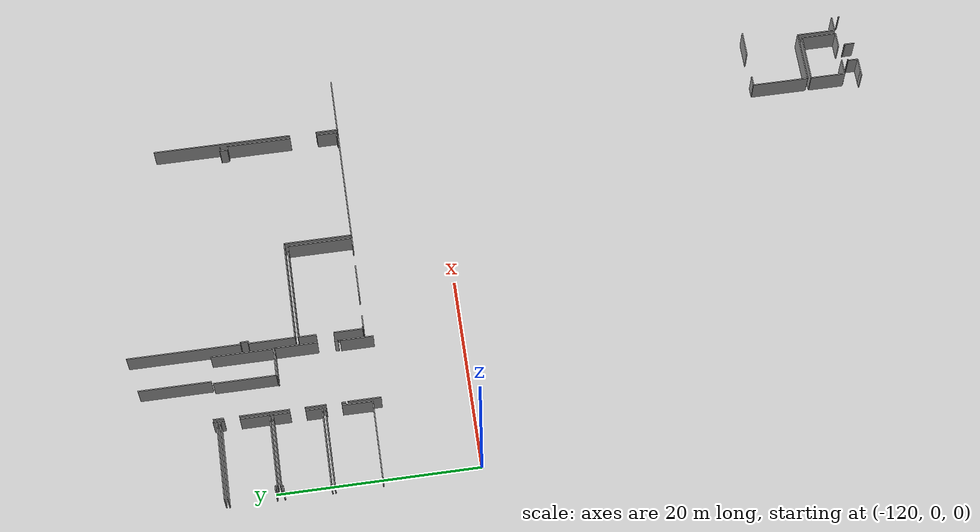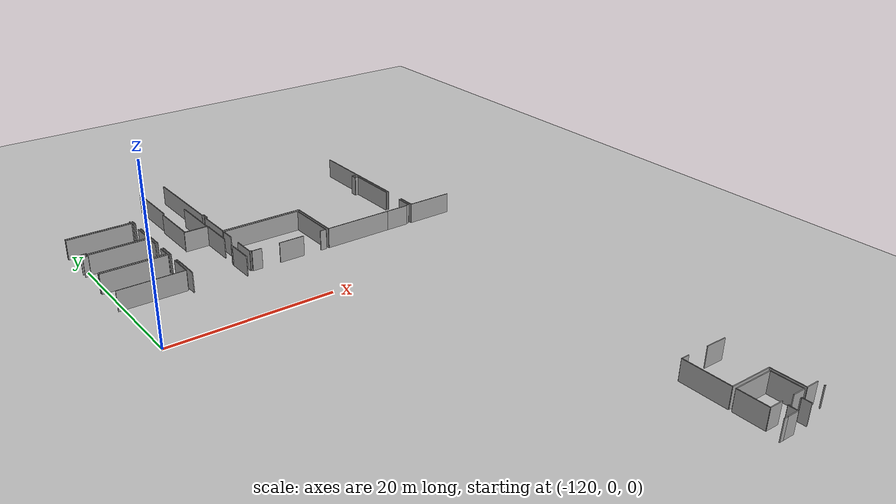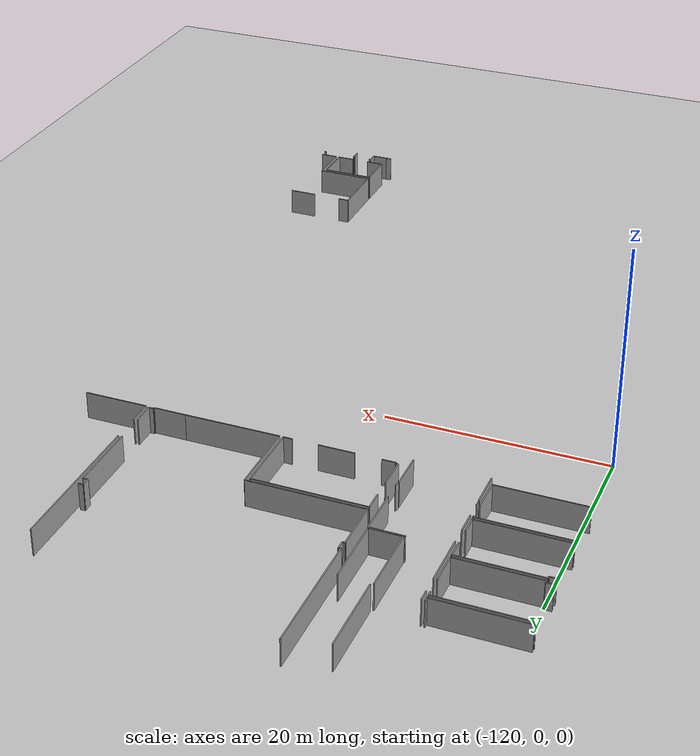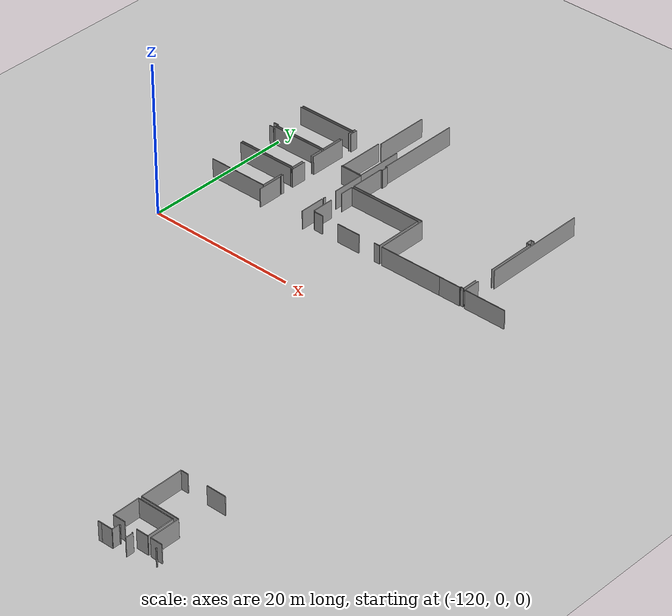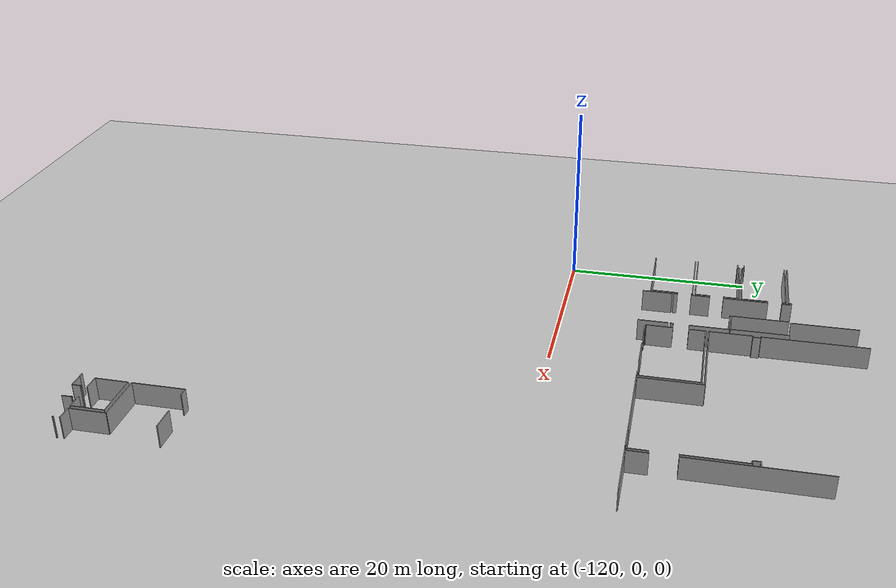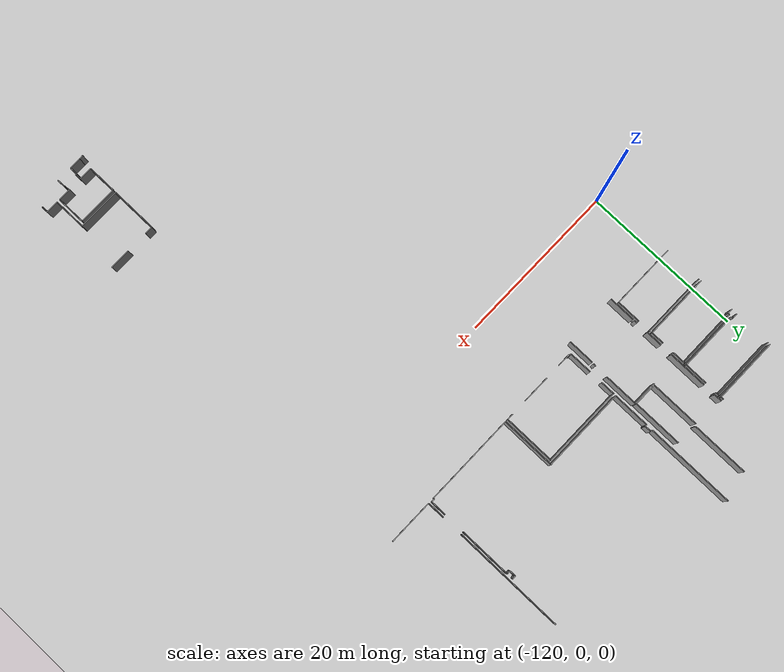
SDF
<sdf version="1.6">
 <world name="default">
  <model name="ground_plane">
   <static>1</static>
   <link name="link">
    <collision name="collision">
     <geometry><plane><normal>0 0 1</normal><size>100 100</size></plane></geometry>
     <surface><friction><ode><mu>100</mu><mu2>50</mu2></ode></friction></surface>
    </collision>
    <visual name="visual">
     <cast_shadows>0</cast_shadows>
     <geometry><plane><normal>0 0 1</normal><size>100 100</size></plane></geometry>
     <material>
      <script><uri>file://media/materials/scripts/gazebo.material</uri><name>Gazebo/Grey</name></script>
     </material>
    </visual>
   </link>
  </model>
  <model name="0510045926_A-40">
   <static>1</static>
   <link name="Wall_648">
    <collision name="Wall_648_Collision">
     <geometry><box><size>6.18366194323 0.1 2.5</size></box></geometry>
     <pose>3.09183097161 0 1.25 0 0 0</pose>
    </collision>
    <visual name="Wall_648_Visual">
     <pose>3.09183097161 0 1.25 0 0 0</pose>
     <geometry><box><size>6.18366194323 0.1 2.5</size></box></geometry>
     <material>
      <script><uri>file://media/materials/scripts/gazebo.material</uri><name>Gazebo/Grey</name></script>
      <ambient>1 1 1 1</ambient>
     </material>
    </visual>
    <pose>28.247488625 -82.4630067964 0 0 0 1.57079632679</pose>
   </link>
   <link name="Wall_649">
    <collision name="Wall_649_Collision">
     <geometry><box><size>6.16817803951 0.1 2.5</size></box></geometry>
     <pose>3.08408901975 0 1.25 0 0 0</pose>
    </collision>
    <visual name="Wall_649_Visual">
     <pose>3.08408901975 0 1.25 0 0 0</pose>
     <geometry><box><size>6.16817803951 0.1 2.5</size></box></geometry>
     <material>
      <script><uri>file://media/materials/scripts/gazebo.material</uri><name>Gazebo/Grey</name></script>
      <ambient>1 1 1 1</ambient>
     </material>
    </visual>
    <pose>25.3969273335 -76.2793448532 0 0 0 -1.57079632679</pose>
   </link>
   <link name="Wall_650">
    <collision name="Wall_650_Collision">
     <geometry><box><size>2.85060334454 0.1 2.5</size></box></geometry>
     <pose>1.42530167227 0 1.25 0 0 0</pose>
    </collision>
    <visual name="Wall_650_Visual">
     <pose>1.42530167227 0 1.25 0 0 0</pose>
     <geometry><box><size>2.85060334454 0.1 2.5</size></box></geometry>
     <material>
      <script><uri>file://media/materials/scripts/gazebo.material</uri><name>Gazebo/Grey</name></script>
      <ambient>1 1 1 1</ambient>
     </material>
    </visual>
    <pose>25.3969273335 -82.4475228927 0 0 0 -0.00543182547367</pose>
   </link>
   <link name="Wall_653">
    <collision name="Wall_653_Collision">
     <geometry><box><size>7.18986185058 0.1 2.5</size></box></geometry>
     <pose>3.59493092529 0 1.25 0 0 0</pose>
    </collision>
    <visual name="Wall_653_Visual">
     <pose>3.59493092529 0 1.25 0 0 0</pose>
     <geometry><box><size>7.18986185058 0.1 2.5</size></box></geometry>
     <material>
      <script><uri>file://media/materials/scripts/gazebo.material</uri><name>Gazebo/Grey</name></script>
      <ambient>1 1 1 1</ambient>
     </material>
    </visual>
    <pose>25.6213170202 -76.1272979953 0 0 0 1.57079632679</pose>
   </link>
   <link name="Wall_703">
    <collision name="Wall_703_Collision">
     <geometry><box><size>6.79184937462 0.1 2.5</size></box></geometry>
     <pose>3.39592468731 0 1.25 0 0 0</pose>
    </collision>
    <visual name="Wall_703_Visual">
     <pose>3.39592468731 0 1.25 0 0 0</pose>
     <geometry><box><size>6.79184937462 0.1 2.5</size></box></geometry>
     <material>
      <script><uri>file://media/materials/scripts/gazebo.material</uri><name>Gazebo/Grey</name></script>
      <ambient>1 1 1 1</ambient>
     </material>
    </visual>
    <pose>39.5535305204 -91.480984624 0 0 0 1.57079632679</pose>
   </link>
   <link name="Wall_704">
    <collision name="Wall_704_Collision">
     <geometry><box><size>10.3808151895 0.1 2.5</size></box></geometry>
     <pose>5.19040759473 0 1.25 0 0 0</pose>
    </collision>
    <visual name="Wall_704_Visual">
     <pose>5.19040759473 0 1.25 0 0 0</pose>
     <geometry><box><size>10.3808151895 0.1 2.5</size></box></geometry>
     <material>
      <script><uri>file://media/materials/scripts/gazebo.material</uri><name>Gazebo/Grey</name></script>
      <ambient>1 1 1 1</ambient>
     </material>
    </visual>
    <pose>39.5535305204 -84.6891352494 0 0 0 3.14159265359</pose>
   </link>
   <link name="Wall_705">
    <collision name="Wall_705_Collision">
     <geometry><box><size>4.59465805322 0.1 2.5</size></box></geometry>
     <pose>2.29732902661 0 1.25 0 0 0</pose>
    </collision>
    <visual name="Wall_705_Visual">
     <pose>2.29732902661 0 1.25 0 0 0</pose>
     <geometry><box><size>4.59465805322 0.1 2.5</size></box></geometry>
     <material>
      <script><uri>file://media/materials/scripts/gazebo.material</uri><name>Gazebo/Grey</name></script>
      <ambient>1 1 1 1</ambient>
     </material>
    </visual>
    <pose>29.172715331 -84.6891352494 0 0 0 1.57079632679</pose>
   </link>
   <link name="Wall_706">
    <collision name="Wall_706_Collision">
     <geometry><box><size>0.227181866064 0.1 2.5</size></box></geometry>
     <pose>0.113590933032 0 1.25 0 0 0</pose>
    </collision>
    <visual name="Wall_706_Visual">
     <pose>0.113590933032 0 1.25 0 0 0</pose>
     <geometry><box><size>0.227181866064 0.1 2.5</size></box></geometry>
     <material>
      <script><uri>file://media/materials/scripts/gazebo.material</uri><name>Gazebo/Grey</name></script>
      <ambient>1 1 1 1</ambient>
     </material>
    </visual>
    <pose>29.172715331 -80.0944771961 0 0 0 0.0</pose>
   </link>
   <link name="Wall_707">
    <collision name="Wall_707_Collision">
     <geometry><box><size>0.796786455392 0.1 2.5</size></box></geometry>
     <pose>0.398393227696 0 1.25 0 0 0</pose>
    </collision>
    <visual name="Wall_707_Visual">
     <pose>0.398393227696 0 1.25 0 0 0</pose>
     <geometry><box><size>0.796786455392 0.1 2.5</size></box></geometry>
     <material>
      <script><uri>file://media/materials/scripts/gazebo.material</uri><name>Gazebo/Grey</name></script>
      <ambient>1 1 1 1</ambient>
     </material>
    </visual>
    <pose>29.399897197 -80.0944771961 0 0 0 1.57079632679</pose>
   </link>
   <link name="Wall_708">
    <collision name="Wall_708_Collision">
     <geometry><box><size>0.213220969267 0.1 2.5</size></box></geometry>
     <pose>0.106610484633 0 1.25 0 0 0</pose>
    </collision>
    <visual name="Wall_708_Visual">
     <pose>0.106610484633 0 1.25 0 0 0</pose>
     <geometry><box><size>0.213220969267 0.1 2.5</size></box></geometry>
     <material>
      <script><uri>file://media/materials/scripts/gazebo.material</uri><name>Gazebo/Grey</name></script>
      <ambient>1 1 1 1</ambient>
     </material>
    </visual>
    <pose>29.399897197 -79.2976907408 0 0 0 3.14159265359</pose>
   </link>
   <link name="Wall_709">
    <collision name="Wall_709_Collision">
     <geometry><box><size>11.2123769696 0.1 2.5</size></box></geometry>
     <pose>5.6061884848 0 1.25 0 0 0</pose>
    </collision>
    <visual name="Wall_709_Visual">
     <pose>5.6061884848 0 1.25 0 0 0</pose>
     <geometry><box><size>11.2123769696 0.1 2.5</size></box></geometry>
     <material>
      <script><uri>file://media/materials/scripts/gazebo.material</uri><name>Gazebo/Grey</name></script>
      <ambient>1 1 1 1</ambient>
     </material>
    </visual>
    <pose>29.1866762278 -79.2976907408 0 0 0 1.57079632679</pose>
   </link>
   <link name="Wall_728">
    <collision name="Wall_728_Collision">
     <geometry><box><size>0.434818476612 0.1 2.5</size></box></geometry>
     <pose>0.217409238306 0 1.25 0 0 0</pose>
    </collision>
    <visual name="Wall_728_Visual">
     <pose>0.217409238306 0 1.25 0 0 0</pose>
     <geometry><box><size>0.434818476612 0.1 2.5</size></box></geometry>
     <material>
      <script><uri>file://media/materials/scripts/gazebo.material</uri><name>Gazebo/Grey</name></script>
      <ambient>1 1 1 1</ambient>
     </material>
    </visual>
    <pose>51.422831143 -79.3162206583 0 0 0 3.14159265359</pose>
   </link>
   <link name="Wall_729">
    <collision name="Wall_729_Collision">
     <geometry><box><size>0.755157599487 0.1 2.5</size></box></geometry>
     <pose>0.377578799744 0 1.25 0 0 0</pose>
    </collision>
    <visual name="Wall_729_Visual">
     <pose>0.377578799744 0 1.25 0 0 0</pose>
     <geometry><box><size>0.755157599487 0.1 2.5</size></box></geometry>
     <material>
      <script><uri>file://media/materials/scripts/gazebo.material</uri><name>Gazebo/Grey</name></script>
      <ambient>1 1 1 1</ambient>
     </material>
    </visual>
    <pose>50.9880126663 -79.3162206583 0 0 0 -1.57079632679</pose>
   </link>
   <link name="Wall_730">
    <collision name="Wall_730_Collision">
     <geometry><box><size>0.43964133187 0.1 2.5</size></box></geometry>
     <pose>0.219820665935 0 1.25 0 0 0</pose>
    </collision>
    <visual name="Wall_730_Visual">
     <pose>0.219820665935 0 1.25 0 0 0</pose>
     <geometry><box><size>0.43964133187 0.1 2.5</size></box></geometry>
     <material>
      <script><uri>file://media/materials/scripts/gazebo.material</uri><name>Gazebo/Grey</name></script>
      <ambient>1 1 1 1</ambient>
     </material>
    </visual>
    <pose>50.9880126663 -80.0713782578 0 0 0 0.0</pose>
   </link>
   <link name="Wall_731">
    <collision name="Wall_731_Collision">
     <geometry><box><size>6.48902483136 0.1 2.5</size></box></geometry>
     <pose>3.24451241568 0 1.25 0 0 0</pose>
    </collision>
    <visual name="Wall_731_Visual">
     <pose>3.24451241568 0 1.25 0 0 0</pose>
     <geometry><box><size>6.48902483136 0.1 2.5</size></box></geometry>
     <material>
      <script><uri>file://media/materials/scripts/gazebo.material</uri><name>Gazebo/Grey</name></script>
      <ambient>1 1 1 1</ambient>
     </material>
    </visual>
    <pose>51.4276539982 -80.0713782578 0 0 0 -1.57079632679</pose>
   </link>
   <link name="Wall_732">
    <collision name="Wall_732_Collision">
     <geometry><box><size>2.01620733201 0.1 2.5</size></box></geometry>
     <pose>1.008103666 0 1.25 0 0 0</pose>
    </collision>
    <visual name="Wall_732_Visual">
     <pose>1.008103666 0 1.25 0 0 0</pose>
     <geometry><box><size>2.01620733201 0.1 2.5</size></box></geometry>
     <material>
      <script><uri>file://media/materials/scripts/gazebo.material</uri><name>Gazebo/Grey</name></script>
      <ambient>1 1 1 1</ambient>
     </material>
    </visual>
    <pose>51.4276539982 -89.2987695373 0 0 0 -1.57079632679</pose>
   </link>
   <link name="Wall_733">
    <collision name="Wall_733_Collision">
     <geometry><box><size>0.421111414302 0.1 2.5</size></box></geometry>
     <pose>0.210555707151 0 1.25 0 0 0</pose>
    </collision>
    <visual name="Wall_733_Visual">
     <pose>0.210555707151 0 1.25 0 0 0</pose>
     <geometry><box><size>0.421111414302 0.1 2.5</size></box></geometry>
     <material>
      <script><uri>file://media/materials/scripts/gazebo.material</uri><name>Gazebo/Grey</name></script>
      <ambient>1 1 1 1</ambient>
     </material>
    </visual>
    <pose>51.4276539982 -91.3149768693 0 0 0 3.14159265359</pose>
   </link>
   <link name="Wall_734">
    <collision name="Wall_734_Collision">
     <geometry><box><size>0.132755436817 0.1 2.5</size></box></geometry>
     <pose>0.0663777184087 0 1.25 0 0 0</pose>
    </collision>
    <visual name="Wall_734_Visual">
     <pose>0.0663777184087 0 1.25 0 0 0</pose>
     <geometry><box><size>0.132755436817 0.1 2.5</size></box></geometry>
     <material>
      <script><uri>file://media/materials/scripts/gazebo.material</uri><name>Gazebo/Grey</name></script>
      <ambient>1 1 1 1</ambient>
     </material>
    </visual>
    <pose>51.0065425839 -91.3149768693 0 0 0 -1.57079632679</pose>
   </link>
   <link name="Wall_735">
    <collision name="Wall_735_Collision">
     <geometry><box><size>2.92772697563 0.1 2.5</size></box></geometry>
     <pose>1.46386348781 0 1.25 0 0 0</pose>
    </collision>
    <visual name="Wall_735_Visual">
     <pose>1.46386348781 0 1.25 0 0 0</pose>
     <geometry><box><size>2.92772697563 0.1 2.5</size></box></geometry>
     <material>
      <script><uri>file://media/materials/scripts/gazebo.material</uri><name>Gazebo/Grey</name></script>
      <ambient>1 1 1 1</ambient>
     </material>
    </visual>
    <pose>51.0065425839 -91.4477323061 0 0 0 3.14159265359</pose>
   </link>
   <link name="Wall_736">
    <collision name="Wall_736_Collision">
     <geometry><box><size>8.52534993686 0.1 2.5</size></box></geometry>
     <pose>4.26267496843 0 1.25 0 0 0</pose>
    </collision>
    <visual name="Wall_736_Visual">
     <pose>4.26267496843 0 1.25 0 0 0</pose>
     <geometry><box><size>8.52534993686 0.1 2.5</size></box></geometry>
     <material>
      <script><uri>file://media/materials/scripts/gazebo.material</uri><name>Gazebo/Grey</name></script>
      <ambient>1 1 1 1</ambient>
     </material>
    </visual>
    <pose>48.0788156083 -91.4477323061 0 0 0 -3.13769223866</pose>
   </link>
   <link name="Wall_766">
    <collision name="Wall_766_Collision">
     <geometry><box><size>0.365013992626 0.1 2.5</size></box></geometry>
     <pose>0.182506996313 0 1.25 0 0 0</pose>
    </collision>
    <visual name="Wall_766_Visual">
     <pose>0.182506996313 0 1.25 0 0 0</pose>
     <geometry><box><size>0.365013992626 0.1 2.5</size></box></geometry>
     <material>
      <script><uri>file://media/materials/scripts/gazebo.material</uri><name>Gazebo/Grey</name></script>
      <ambient>1 1 1 1</ambient>
     </material>
    </visual>
    <pose>21.3175532894 -75.8818400462 0 0 0 -1.57079632679</pose>
   </link>
   <link name="Wall_767">
    <collision name="Wall_767_Collision">
     <geometry><box><size>8.01177792021 0.1 2.5</size></box></geometry>
     <pose>4.0058889601 0 1.25 0 0 0</pose>
    </collision>
    <visual name="Wall_767_Visual">
     <pose>4.0058889601 0 1.25 0 0 0</pose>
     <geometry><box><size>8.01177792021 0.1 2.5</size></box></geometry>
     <material>
      <script><uri>file://media/materials/scripts/gazebo.material</uri><name>Gazebo/Grey</name></script>
      <ambient>1 1 1 1</ambient>
     </material>
    </visual>
    <pose>21.3175532894 -76.2468540388 0 0 0 3.14159265359</pose>
   </link>
   <link name="Wall_770">
    <collision name="Wall_770_Collision">
     <geometry><box><size>8.03208467918 0.1 2.5</size></box></geometry>
     <pose>4.01604233959 0 1.25 0 0 0</pose>
    </collision>
    <visual name="Wall_770_Visual">
     <pose>4.01604233959 0 1.25 0 0 0</pose>
     <geometry><box><size>8.03208467918 0.1 2.5</size></box></geometry>
     <material>
      <script><uri>file://media/materials/scripts/gazebo.material</uri><name>Gazebo/Grey</name></script>
      <ambient>1 1 1 1</ambient>
     </material>
    </visual>
    <pose>13.2935913138 -76.5598319616 0 0 0 0.0</pose>
   </link>
   <link name="Wall_771">
    <collision name="Wall_771_Collision">
     <geometry><box><size>0.419842241866 0.1 2.5</size></box></geometry>
     <pose>0.209921120933 0 1.25 0 0 0</pose>
    </collision>
    <visual name="Wall_771_Visual">
     <pose>0.209921120933 0 1.25 0 0 0</pose>
     <geometry><box><size>0.419842241866 0.1 2.5</size></box></geometry>
     <material>
      <script><uri>file://media/materials/scripts/gazebo.material</uri><name>Gazebo/Grey</name></script>
      <ambient>1 1 1 1</ambient>
     </material>
    </visual>
    <pose>21.325675993 -76.5598319616 0 0 0 -1.57079632679</pose>
   </link>
   <link name="Wall_772">
    <collision name="Wall_772_Collision">
     <geometry><box><size>2.88533661626 0.1 2.5</size></box></geometry>
     <pose>1.44266830813 0 1.25 0 0 0</pose>
    </collision>
    <visual name="Wall_772_Visual">
     <pose>1.44266830813 0 1.25 0 0 0</pose>
     <geometry><box><size>2.88533661626 0.1 2.5</size></box></geometry>
     <material>
      <script><uri>file://media/materials/scripts/gazebo.material</uri><name>Gazebo/Grey</name></script>
      <ambient>1 1 1 1</ambient>
     </material>
    </visual>
    <pose>21.325675993 -78.4948122577 0 0 0 -1.57079632679</pose>
   </link>
   <link name="Wall_773">
    <collision name="Wall_773_Collision">
     <geometry><box><size>7.36500764676 0.1 2.5</size></box></geometry>
     <pose>3.68250382338 0 1.25 0 0 0</pose>
    </collision>
    <visual name="Wall_773_Visual">
     <pose>3.68250382338 0 1.25 0 0 0</pose>
     <geometry><box><size>7.36500764676 0.1 2.5</size></box></geometry>
     <material>
      <script><uri>file://media/materials/scripts/gazebo.material</uri><name>Gazebo/Grey</name></script>
      <ambient>1 1 1 1</ambient>
     </material>
    </visual>
    <pose>21.325675993 -81.3801488739 0 0 0 3.14159265359</pose>
   </link>
   <link name="Wall_774">
    <collision name="Wall_774_Collision">
     <geometry><box><size>0.211951796831 0.1 2.5</size></box></geometry>
     <pose>0.105975898415 0 1.25 0 0 0</pose>
    </collision>
    <visual name="Wall_774_Visual">
     <pose>0.105975898415 0 1.25 0 0 0</pose>
     <geometry><box><size>0.211951796831 0.1 2.5</size></box></geometry>
     <material>
      <script><uri>file://media/materials/scripts/gazebo.material</uri><name>Gazebo/Grey</name></script>
      <ambient>1 1 1 1</ambient>
     </material>
    </visual>
    <pose>13.9606683462 -81.3801488739 0 0 0 1.57079632679</pose>
   </link>
   <link name="Wall_775">
    <collision name="Wall_775_Collision">
     <geometry><box><size>0.652862301137 0.1 2.5</size></box></geometry>
     <pose>0.326431150568 0 1.25 0 0 0</pose>
    </collision>
    <visual name="Wall_775_Visual">
     <pose>0.326431150568 0 1.25 0 0 0</pose>
     <geometry><box><size>0.652862301137 0.1 2.5</size></box></geometry>
     <material>
      <script><uri>file://media/materials/scripts/gazebo.material</uri><name>Gazebo/Grey</name></script>
      <ambient>1 1 1 1</ambient>
     </material>
    </visual>
    <pose>13.9606683462 -81.1681970771 0 0 0 3.14159265359</pose>
   </link>
   <link name="Wall_776">
    <collision name="Wall_776_Collision">
     <geometry><box><size>7.36602298471 0.1 2.5</size></box></geometry>
     <pose>3.68301149236 0 1.25 0 0 0</pose>
    </collision>
    <visual name="Wall_776_Visual">
     <pose>3.68301149236 0 1.25 0 0 0</pose>
     <geometry><box><size>7.36602298471 0.1 2.5</size></box></geometry>
     <material>
      <script><uri>file://media/materials/scripts/gazebo.material</uri><name>Gazebo/Grey</name></script>
      <ambient>1 1 1 1</ambient>
     </material>
    </visual>
    <pose>13.9398539183 -81.6819580792 0 0 0 0.0</pose>
   </link>
   <link name="Wall_777">
    <collision name="Wall_777_Collision">
     <geometry><box><size>1.69409136772 0.1 2.5</size></box></geometry>
     <pose>0.847045683862 0 1.25 0 0 0</pose>
    </collision>
    <visual name="Wall_777_Visual">
     <pose>0.847045683862 0 1.25 0 0 0</pose>
     <geometry><box><size>1.69409136772 0.1 2.5</size></box></geometry>
     <material>
      <script><uri>file://media/materials/scripts/gazebo.material</uri><name>Gazebo/Grey</name></script>
      <ambient>1 1 1 1</ambient>
     </material>
    </visual>
    <pose>21.305876903 -81.6819580792 0 0 0 -1.57079632679</pose>
   </link>
   <link name="Wall_778">
    <collision name="Wall_778_Collision">
     <geometry><box><size>1.62352538028 0.1 2.5</size></box></geometry>
     <pose>0.811762690138 0 1.25 0 0 0</pose>
    </collision>
    <visual name="Wall_778_Visual">
     <pose>0.811762690138 0 1.25 0 0 0</pose>
     <geometry><box><size>1.62352538028 0.1 2.5</size></box></geometry>
     <material>
      <script><uri>file://media/materials/scripts/gazebo.material</uri><name>Gazebo/Grey</name></script>
      <ambient>1 1 1 1</ambient>
     </material>
    </visual>
    <pose>21.305876903 -84.8757035975 0 0 0 -1.57079632679</pose>
   </link>
   <link name="Wall_779">
    <collision name="Wall_779_Collision">
     <geometry><box><size>8.00822423739 0.1 2.5</size></box></geometry>
     <pose>4.00411211869 0 1.25 0 0 0</pose>
    </collision>
    <visual name="Wall_779_Visual">
     <pose>4.00411211869 0 1.25 0 0 0</pose>
     <geometry><box><size>8.00822423739 0.1 2.5</size></box></geometry>
     <material>
      <script><uri>file://media/materials/scripts/gazebo.material</uri><name>Gazebo/Grey</name></script>
      <ambient>1 1 1 1</ambient>
     </material>
    </visual>
    <pose>21.305876903 -86.4992289777 0 0 0 3.14159265359</pose>
   </link>
   <link name="Wall_780">
    <collision name="Wall_780_Collision">
     <geometry><box><size>0.634332383569 0.1 2.5</size></box></geometry>
     <pose>0.317166191785 0 1.25 0 0 0</pose>
    </collision>
    <visual name="Wall_780_Visual">
     <pose>0.317166191785 0 1.25 0 0 0</pose>
     <geometry><box><size>0.634332383569 0.1 2.5</size></box></geometry>
     <material>
      <script><uri>file://media/materials/scripts/gazebo.material</uri><name>Gazebo/Grey</name></script>
      <ambient>1 1 1 1</ambient>
     </material>
    </visual>
    <pose>13.2976526656 -81.9035555866 0 0 0 0.0</pose>
   </link>
   <link name="Wall_781">
    <collision name="Wall_781_Collision">
     <geometry><box><size>0.221737174066 0.1 2.5</size></box></geometry>
     <pose>0.110868587033 0 1.25 0 0 0</pose>
    </collision>
    <visual name="Wall_781_Visual">
     <pose>0.110868587033 0 1.25 0 0 0</pose>
     <geometry><box><size>0.221737174066 0.1 2.5</size></box></geometry>
     <material>
      <script><uri>file://media/materials/scripts/gazebo.material</uri><name>Gazebo/Grey</name></script>
      <ambient>1 1 1 1</ambient>
     </material>
    </visual>
    <pose>13.9319850491 -81.9035555866 0 0 0 1.5353015042</pose>
   </link>
   <link name="Wall_782">
    <collision name="Wall_782_Collision">
     <geometry><box><size>8.02370814111 0.1 2.5</size></box></geometry>
     <pose>4.01185407055 0 1.25 0 0 0</pose>
    </collision>
    <visual name="Wall_782_Visual">
     <pose>4.01185407055 0 1.25 0 0 0</pose>
     <geometry><box><size>8.02370814111 0.1 2.5</size></box></geometry>
     <material>
      <script><uri>file://media/materials/scripts/gazebo.material</uri><name>Gazebo/Grey</name></script>
      <ambient>1 1 1 1</ambient>
     </material>
    </visual>
    <pose>21.3310065172 -91.4576318512 0 0 0 3.14159265359</pose>
   </link>
   <link name="Wall_783">
    <collision name="Wall_783_Collision">
     <geometry><box><size>8.05112226573 0.1 2.5</size></box></geometry>
     <pose>4.02556113286 0 1.25 0 0 0</pose>
    </collision>
    <visual name="Wall_783_Visual">
     <pose>4.02556113286 0 1.25 0 0 0</pose>
     <geometry><box><size>8.05112226573 0.1 2.5</size></box></geometry>
     <material>
      <script><uri>file://media/materials/scripts/gazebo.material</uri><name>Gazebo/Grey</name></script>
      <ambient>1 1 1 1</ambient>
     </material>
    </visual>
    <pose>13.3072983761 -86.802053521 0 0 0 0.0</pose>
   </link>
   <link name="Wall_784">
    <collision name="Wall_784_Collision">
     <geometry><box><size>0.130978595407 0.1 2.5</size></box></geometry>
     <pose>0.0654892977034 0 1.25 0 0 0</pose>
    </collision>
    <visual name="Wall_784_Visual">
     <pose>0.0654892977034 0 1.25 0 0 0</pose>
     <geometry><box><size>0.130978595407 0.1 2.5</size></box></geometry>
     <material>
      <script><uri>file://media/materials/scripts/gazebo.material</uri><name>Gazebo/Grey</name></script>
      <ambient>1 1 1 1</ambient>
     </material>
    </visual>
    <pose>21.3584206418 -86.802053521 0 0 0 -1.57079632679</pose>
   </link>
   <link name="Wall_785">
    <collision name="Wall_785_Collision">
     <geometry><box><size>3.01745508332 0.1 2.5</size></box></geometry>
     <pose>1.50872754166 0 1.25 0 0 0</pose>
    </collision>
    <visual name="Wall_785_Visual">
     <pose>1.50872754166 0 1.25 0 0 0</pose>
     <geometry><box><size>3.01745508332 0.1 2.5</size></box></geometry>
     <material>
      <script><uri>file://media/materials/scripts/gazebo.material</uri><name>Gazebo/Grey</name></script>
      <ambient>1 1 1 1</ambient>
     </material>
    </visual>
    <pose>21.3584206418 -88.4403013015 0 0 0 -1.57988163246</pose>
   </link>
   <link name="Wall_786">
    <collision name="Wall_786_Collision">
     <geometry><box><size>3.27903390594 0.1 2.5</size></box></geometry>
     <pose>1.63951695297 0 1.25 0 0 0</pose>
    </collision>
    <visual name="Wall_786_Visual">
     <pose>1.63951695297 0 1.25 0 0 0</pose>
     <geometry><box><size>3.27903390594 0.1 2.5</size></box></geometry>
     <material>
      <script><uri>file://media/materials/scripts/gazebo.material</uri><name>Gazebo/Grey</name></script>
      <ambient>1 1 1 1</ambient>
     </material>
    </visual>
    <pose>21.6470304538 -92.3204152732 0 0 0 1.57079632679</pose>
   </link>
   <link name="Wall_787">
    <collision name="Wall_787_Collision">
     <geometry><box><size>3.29756382351 0.1 2.5</size></box></geometry>
     <pose>1.64878191175 0 1.25 0 0 0</pose>
    </collision>
    <visual name="Wall_787_Visual">
     <pose>1.64878191175 0 1.25 0 0 0</pose>
     <geometry><box><size>3.29756382351 0.1 2.5</size></box></geometry>
     <material>
      <script><uri>file://media/materials/scripts/gazebo.material</uri><name>Gazebo/Grey</name></script>
      <ambient>1 1 1 1</ambient>
     </material>
    </visual>
    <pose>28.2266741971 -89.0413813673 0 0 0 -1.57079632679</pose>
   </link>
   <link name="Wall_788">
    <collision name="Wall_788_Collision">
     <geometry><box><size>10.0487996802 0.1 2.5</size></box></geometry>
     <pose>5.02439984008 0 1.25 0 0 0</pose>
    </collision>
    <visual name="Wall_788_Visual">
     <pose>5.02439984008 0 1.25 0 0 0</pose>
     <geometry><box><size>10.0487996802 0.1 2.5</size></box></geometry>
     <material>
      <script><uri>file://media/materials/scripts/gazebo.material</uri><name>Gazebo/Grey</name></script>
      <ambient>1 1 1 1</ambient>
     </material>
    </visual>
    <pose>29.1569775928 -85.0206430897 0 0 0 0.0</pose>
   </link>
   <link name="Wall_789">
    <collision name="Wall_789_Collision">
     <geometry><box><size>6.45424950661 0.1 2.5</size></box></geometry>
     <pose>3.2271247533 0 1.25 0 0 0</pose>
    </collision>
    <visual name="Wall_789_Visual">
     <pose>3.2271247533 0 1.25 0 0 0</pose>
     <geometry><box><size>6.45424950661 0.1 2.5</size></box></geometry>
     <material>
      <script><uri>file://media/materials/scripts/gazebo.material</uri><name>Gazebo/Grey</name></script>
      <ambient>1 1 1 1</ambient>
     </material>
    </visual>
    <pose>39.2057772729 -85.0206430897 0 0 0 -1.57079632679</pose>
   </link>
   <link name="Wall_790">
    <collision name="Wall_790_Collision">
     <geometry><box><size>0.78967908975 0.1 2.5</size></box></geometry>
     <pose>0.394839544875 0 1.25 0 0 0</pose>
    </collision>
    <visual name="Wall_790_Visual">
     <pose>0.394839544875 0 1.25 0 0 0</pose>
     <geometry><box><size>0.78967908975 0.1 2.5</size></box></geometry>
     <material>
      <script><uri>file://media/materials/scripts/gazebo.material</uri><name>Gazebo/Grey</name></script>
      <ambient>1 1 1 1</ambient>
     </material>
    </visual>
    <pose>39.2057772729 -91.4748925963 0 0 0 3.14159265359</pose>
   </link>
   <link name="Wall_791">
    <collision name="Wall_791_Collision">
     <geometry><box><size>3.19780687003 0.1 2.5</size></box></geometry>
     <pose>1.59890343502 0 1.25 0 0 0</pose>
    </collision>
    <visual name="Wall_791_Visual">
     <pose>1.59890343502 0 1.25 0 0 0</pose>
     <geometry><box><size>3.19780687003 0.1 2.5</size></box></geometry>
     <material>
      <script><uri>file://media/materials/scripts/gazebo.material</uri><name>Gazebo/Grey</name></script>
      <ambient>1 1 1 1</ambient>
     </material>
    </visual>
    <pose>36.1239727636 -91.4748925963 0 0 0 3.14159265359</pose>
   </link>
   <link name="Wall_792">
    <collision name="Wall_792_Collision">
     <geometry><box><size>1.24861184265 0.1 2.5</size></box></geometry>
     <pose>0.624305921324 0 1.25 0 0 0</pose>
    </collision>
    <visual name="Wall_792_Visual">
     <pose>0.624305921324 0 1.25 0 0 0</pose>
     <geometry><box><size>1.24861184265 0.1 2.5</size></box></geometry>
     <material>
      <script><uri>file://media/materials/scripts/gazebo.material</uri><name>Gazebo/Grey</name></script>
      <ambient>1 1 1 1</ambient>
     </material>
    </visual>
    <pose>30.602818832 -91.4748925963 0 0 0 3.14159265359</pose>
   </link>
   <link name="Wall_793">
    <collision name="Wall_793_Collision">
     <geometry><box><size>0.10051845694 0.1 2.5</size></box></geometry>
     <pose>0.0502592284701 0 1.25 0 0 0</pose>
    </collision>
    <visual name="Wall_793_Visual">
     <pose>0.0502592284701 0 1.25 0 0 0</pose>
     <geometry><box><size>0.10051845694 0.1 2.5</size></box></geometry>
     <material>
      <script><uri>file://media/materials/scripts/gazebo.material</uri><name>Gazebo/Grey</name></script>
      <ambient>1 1 1 1</ambient>
     </material>
    </visual>
    <pose>29.3542069893 -91.4748925963 0 0 0 1.57079632679</pose>
   </link>
   <link name="Wall_794">
    <collision name="Wall_794_Collision">
     <geometry><box><size>0.193675713751 0.1 2.5</size></box></geometry>
     <pose>0.0968378568754 0 1.25 0 0 0</pose>
    </collision>
    <visual name="Wall_794_Visual">
     <pose>0.0968378568754 0 1.25 0 0 0</pose>
     <geometry><box><size>0.193675713751 0.1 2.5</size></box></geometry>
     <material>
      <script><uri>file://media/materials/scripts/gazebo.material</uri><name>Gazebo/Grey</name></script>
      <ambient>1 1 1 1</ambient>
     </material>
    </visual>
    <pose>29.3542069893 -91.3743741393 0 0 0 3.14159265359</pose>
   </link>
   <link name="Wall_795">
    <collision name="Wall_795_Collision">
     <geometry><box><size>2.87289872639 0.1 2.5</size></box></geometry>
     <pose>1.43644936319 0 1.25 0 0 0</pose>
    </collision>
    <visual name="Wall_795_Visual">
     <pose>1.43644936319 0 1.25 0 0 0</pose>
     <geometry><box><size>2.87289872639 0.1 2.5</size></box></geometry>
     <material>
      <script><uri>file://media/materials/scripts/gazebo.material</uri><name>Gazebo/Grey</name></script>
      <ambient>1 1 1 1</ambient>
     </material>
    </visual>
    <pose>29.1605312756 -91.3743741393 0 0 0 1.57079632679</pose>
   </link>
   <link name="Wall_796">
    <collision name="Wall_796_Collision">
     <geometry><box><size>1.7786218021 0.1 2.5</size></box></geometry>
     <pose>0.889310901049 0 1.25 0 0 0</pose>
    </collision>
    <visual name="Wall_796_Visual">
     <pose>0.889310901049 0 1.25 0 0 0</pose>
     <geometry><box><size>1.7786218021 0.1 2.5</size></box></geometry>
     <material>
      <script><uri>file://media/materials/scripts/gazebo.material</uri><name>Gazebo/Grey</name></script>
      <ambient>1 1 1 1</ambient>
     </material>
    </visual>
    <pose>29.1605312756 -86.7992613416 0 0 0 1.57279432613</pose>
   </link>
   <link name="Wall_797">
    <collision name="Wall_797_Collision">
     <geometry><box><size>0.418319234943 0.1 2.5</size></box></geometry>
     <pose>0.209159617471 0 1.25 0 0 0</pose>
    </collision>
    <visual name="Wall_797_Visual">
     <pose>0.209159617471 0 1.25 0 0 0</pose>
     <geometry><box><size>0.418319234943 0.1 2.5</size></box></geometry>
     <material>
      <script><uri>file://media/materials/scripts/gazebo.material</uri><name>Gazebo/Grey</name></script>
      <ambient>1 1 1 1</ambient>
     </material>
    </visual>
    <pose>21.6170779843 -88.8504978329 0 0 0 1.57079632679</pose>
   </link>
   <link name="Wall_798">
    <collision name="Wall_798_Collision">
     <geometry><box><size>2.07052791227 0.1 2.5</size></box></geometry>
     <pose>1.03526395614 0 1.25 0 0 0</pose>
    </collision>
    <visual name="Wall_798_Visual">
     <pose>1.03526395614 0 1.25 0 0 0</pose>
     <geometry><box><size>2.07052791227 0.1 2.5</size></box></geometry>
     <material>
      <script><uri>file://media/materials/scripts/gazebo.material</uri><name>Gazebo/Grey</name></script>
      <ambient>1 1 1 1</ambient>
     </material>
    </visual>
    <pose>21.6170779843 -86.9287169301 0 0 0 1.57079632679</pose>
   </link>
   <link name="Wall_799">
    <collision name="Wall_799_Collision">
     <geometry><box><size>4.88834455493 0.1 2.5</size></box></geometry>
     <pose>2.44417227747 0 1.25 0 0 0</pose>
    </collision>
    <visual name="Wall_799_Visual">
     <pose>2.44417227747 0 1.25 0 0 0</pose>
     <geometry><box><size>4.88834455493 0.1 2.5</size></box></geometry>
     <material>
      <script><uri>file://media/materials/scripts/gazebo.material</uri><name>Gazebo/Grey</name></script>
      <ambient>1 1 1 1</ambient>
     </material>
    </visual>
    <pose>21.6170779843 -83.3623423846 0 0 0 1.57079632679</pose>
   </link>
   <link name="Wall_800">
    <collision name="Wall_800_Collision">
     <geometry><box><size>1.03158335607 0.1 2.5</size></box></geometry>
     <pose>0.515791678036 0 1.25 0 0 0</pose>
    </collision>
    <visual name="Wall_800_Visual">
     <pose>0.515791678036 0 1.25 0 0 0</pose>
     <geometry><box><size>1.03158335607 0.1 2.5</size></box></geometry>
     <material>
      <script><uri>file://media/materials/scripts/gazebo.material</uri><name>Gazebo/Grey</name></script>
      <ambient>1 1 1 1</ambient>
     </material>
    </visual>
    <pose>21.6170779843 -76.9535292513 0 0 0 1.57079632679</pose>
   </link>
   <link name="Wall_805">
    <collision name="Wall_805_Collision">
     <geometry><box><size>3.03586046718 0.1 2.5</size></box></geometry>
     <pose>1.51793023359 0 1.25 0 0 0</pose>
    </collision>
    <visual name="Wall_805_Visual">
     <pose>1.51793023359 0 1.25 0 0 0</pose>
     <geometry><box><size>3.03586046718 0.1 2.5</size></box></geometry>
     <material>
      <script><uri>file://media/materials/scripts/gazebo.material</uri><name>Gazebo/Grey</name></script>
      <ambient>1 1 1 1</ambient>
     </material>
    </visual>
    <pose>25.2768636211 -82.5538795428 0 0 0 0.0</pose>
   </link>
   <link name="Wall_806">
    <collision name="Wall_806_Collision">
     <geometry><box><size>4.27533426829 0.1 2.5</size></box></geometry>
     <pose>2.13766713415 0 1.25 0 0 0</pose>
    </collision>
    <visual name="Wall_806_Visual">
     <pose>2.13766713415 0 1.25 0 0 0</pose>
     <geometry><box><size>4.27533426829 0.1 2.5</size></box></geometry>
     <material>
      <script><uri>file://media/materials/scripts/gazebo.material</uri><name>Gazebo/Grey</name></script>
      <ambient>1 1 1 1</ambient>
     </material>
    </visual>
    <pose>28.3127240883 -82.5538795428 0 0 0 -1.57079632679</pose>
   </link>
   <link name="Wall_807">
    <collision name="Wall_807_Collision">
     <geometry><box><size>0.356702036479 0.1 2.5</size></box></geometry>
     <pose>0.17835101824 0 1.25 0 0 0</pose>
    </collision>
    <visual name="Wall_807_Visual">
     <pose>0.17835101824 0 1.25 0 0 0</pose>
     <geometry><box><size>0.356702036479 0.1 2.5</size></box></geometry>
     <material>
      <script><uri>file://media/materials/scripts/gazebo.material</uri><name>Gazebo/Grey</name></script>
      <ambient>1 1 1 1</ambient>
     </material>
    </visual>
    <pose>28.3127240883 -88.5042675923 0 0 0 -1.81370388484</pose>
   </link>
   <link name="Wall_909">
    <collision name="Wall_909_Collision">
     <geometry><box><size>2.21064454922 0.1 2.5</size></box></geometry>
     <pose>1.10532227461 0 1.25 0 0 0</pose>
    </collision>
    <visual name="Wall_909_Visual">
     <pose>1.10532227461 0 1.25 0 0 0</pose>
     <geometry><box><size>2.21064454922 0.1 2.5</size></box></geometry>
     <material>
      <script><uri>file://media/materials/scripts/gazebo.material</uri><name>Gazebo/Grey</name></script>
      <ambient>1 1 1 1</ambient>
     </material>
    </visual>
    <pose>51.7540851488 -91.4426556164 0 0 0 1.57079632679</pose>
   </link>
   <link name="Wall_910">
    <collision name="Wall_910_Collision">
     <geometry><box><size>13.9047993756 0.1 2.5</size></box></geometry>
     <pose>6.95239968778 0 1.25 0 0 0</pose>
    </collision>
    <visual name="Wall_910_Visual">
     <pose>6.95239968778 0 1.25 0 0 0</pose>
     <geometry><box><size>13.9047993756 0.1 2.5</size></box></geometry>
     <material>
      <script><uri>file://media/materials/scripts/gazebo.material</uri><name>Gazebo/Grey</name></script>
      <ambient>1 1 1 1</ambient>
     </material>
    </visual>
    <pose>51.7540851488 -86.5279122748 0 0 0 1.57079632679</pose>
   </link>
   <link name="Wall_934">
    <collision name="Wall_934_Collision">
     <geometry><box><size>5.6747347872 0.1 2.5</size></box></geometry>
     <pose>2.8373673936 0 1.25 0 0 0</pose>
    </collision>
    <visual name="Wall_934_Visual">
     <pose>2.8373673936 0 1.25 0 0 0</pose>
     <geometry><box><size>5.6747347872 0.1 2.5</size></box></geometry>
     <material>
      <script><uri>file://media/materials/scripts/gazebo.material</uri><name>Gazebo/Grey</name></script>
      <ambient>1 1 1 1</ambient>
     </material>
    </visual>
    <pose>57.4288089451 -91.431486899 0 0 0 -3.1396245044</pose>
   </link>
   <link name="Wall_1282">
    <collision name="Wall_1282_Collision">
     <geometry><box><size>3.55520582804 0.1 2.5</size></box></geometry>
     <pose>1.77760291402 0 1.25 0 0 0</pose>
    </collision>
    <visual name="Wall_1282_Visual">
     <pose>1.77760291402 0 1.25 0 0 0</pose>
     <geometry><box><size>3.55520582804 0.1 2.5</size></box></geometry>
     <material>
      <script><uri>file://media/materials/scripts/gazebo.material</uri><name>Gazebo/Grey</name></script>
      <ambient>1 1 1 1</ambient>
     </material>
    </visual>
    <pose>50.8458653535 -144.28160398 0 0 0 1.57079632679</pose>
   </link>
   <link name="Wall_1283">
    <collision name="Wall_1283_Collision">
     <geometry><box><size>4.88123718929 0.1 2.5</size></box></geometry>
     <pose>2.44061859465 0 1.25 0 0 0</pose>
    </collision>
    <visual name="Wall_1283_Visual">
     <pose>2.44061859465 0 1.25 0 0 0</pose>
     <geometry><box><size>4.88123718929 0.1 2.5</size></box></geometry>
     <material>
      <script><uri>file://media/materials/scripts/gazebo.material</uri><name>Gazebo/Grey</name></script>
      <ambient>1 1 1 1</ambient>
     </material>
    </visual>
    <pose>50.8458653535 -140.726398152 0 0 0 0.0</pose>
   </link>
   <link name="Wall_1284">
    <collision name="Wall_1284_Collision">
     <geometry><box><size>3.56256702817 0.1 2.5</size></box></geometry>
     <pose>1.78128351408 0 1.25 0 0 0</pose>
    </collision>
    <visual name="Wall_1284_Visual">
     <pose>1.78128351408 0 1.25 0 0 0</pose>
     <geometry><box><size>3.56256702817 0.1 2.5</size></box></geometry>
     <material>
      <script><uri>file://media/materials/scripts/gazebo.material</uri><name>Gazebo/Grey</name></script>
      <ambient>1 1 1 1</ambient>
     </material>
    </visual>
    <pose>55.7271025428 -140.726398152 0 0 0 -1.57079632679</pose>
   </link>
   <link name="Wall_1285">
    <collision name="Wall_1285_Collision">
     <geometry><box><size>1.59255757283 0.1 2.5</size></box></geometry>
     <pose>0.796278786417 0 1.25 0 0 0</pose>
    </collision>
    <visual name="Wall_1285_Visual">
     <pose>0.796278786417 0 1.25 0 0 0</pose>
     <geometry><box><size>1.59255757283 0.1 2.5</size></box></geometry>
     <material>
      <script><uri>file://media/materials/scripts/gazebo.material</uri><name>Gazebo/Grey</name></script>
      <ambient>1 1 1 1</ambient>
     </material>
    </visual>
    <pose>55.7271025428 -144.28896518 0 0 0 3.14159265359</pose>
   </link>
   <link name="Wall_1286">
    <collision name="Wall_1286_Collision">
     <geometry><box><size>1.64080263792 0.1 2.5</size></box></geometry>
     <pose>0.820401318958 0 1.25 0 0 0</pose>
    </collision>
    <visual name="Wall_1286_Visual">
     <pose>0.820401318958 0 1.25 0 0 0</pose>
     <geometry><box><size>1.64080263792 0.1 2.5</size></box></geometry>
     <material>
      <script><uri>file://media/materials/scripts/gazebo.material</uri><name>Gazebo/Grey</name></script>
      <ambient>1 1 1 1</ambient>
     </material>
    </visual>
    <pose>52.4866514789 -144.28896518 0 0 0 3.13710629755</pose>
   </link>
   <link name="Wall_1287">
    <collision name="Wall_1287_Collision">
     <geometry><box><size>5.69299987943 0.1 2.5</size></box></geometry>
     <pose>2.84649993971 0 1.25 0 0 0</pose>
    </collision>
    <visual name="Wall_1287_Visual">
     <pose>2.84649993971 0 1.25 0 0 0</pose>
     <geometry><box><size>5.69299987943 0.1 2.5</size></box></geometry>
     <material>
      <script><uri>file://media/materials/scripts/gazebo.material</uri><name>Gazebo/Grey</name></script>
      <ambient>1 1 1 1</ambient>
     </material>
    </visual>
    <pose>50.8537342226 -140.349707773 0 0 0 1.57079632679</pose>
   </link>
   <link name="Wall_1288">
    <collision name="Wall_1288_Collision">
     <geometry><box><size>0.983100969013 0.1 2.5</size></box></geometry>
     <pose>0.491550484507 0 1.25 0 0 0</pose>
    </collision>
    <visual name="Wall_1288_Visual">
     <pose>0.491550484507 0 1.25 0 0 0</pose>
     <geometry><box><size>0.983100969013 0.1 2.5</size></box></geometry>
     <material>
      <script><uri>file://media/materials/scripts/gazebo.material</uri><name>Gazebo/Grey</name></script>
      <ambient>1 1 1 1</ambient>
     </material>
    </visual>
    <pose>50.8537342226 -134.656707894 0 0 0 0.0</pose>
   </link>
   <link name="Wall_1289">
    <collision name="Wall_1289_Collision">
     <geometry><box><size>2.58555808685 0.1 2.5</size></box></geometry>
     <pose>1.29277904342 0 1.25 0 0 0</pose>
    </collision>
    <visual name="Wall_1289_Visual">
     <pose>1.29277904342 0 1.25 0 0 0</pose>
     <geometry><box><size>2.58555808685 0.1 2.5</size></box></geometry>
     <material>
      <script><uri>file://media/materials/scripts/gazebo.material</uri><name>Gazebo/Grey</name></script>
      <ambient>1 1 1 1</ambient>
     </material>
    </visual>
    <pose>54.5427108254 -134.656707894 0 0 0 0.0</pose>
   </link>
   <link name="Wall_1293">
    <collision name="Wall_1293_Collision">
     <geometry><box><size>1.57377382078 0.1 2.5</size></box></geometry>
     <pose>0.78688691039 0 1.25 0 0 0</pose>
    </collision>
    <visual name="Wall_1293_Visual">
     <pose>0.78688691039 0 1.25 0 0 0</pose>
     <geometry><box><size>1.57377382078 0.1 2.5</size></box></geometry>
     <material>
      <script><uri>file://media/materials/scripts/gazebo.material</uri><name>Gazebo/Grey</name></script>
      <ambient>1 1 1 1</ambient>
     </material>
    </visual>
    <pose>57.7026963568 -144.283634656 0 0 0 3.14159265359</pose>
   </link>
   <link name="Wall_1294">
    <collision name="Wall_1294_Collision">
     <geometry><box><size>3.93367304849 0.1 2.5</size></box></geometry>
     <pose>1.96683652424 0 1.25 0 0 0</pose>
    </collision>
    <visual name="Wall_1294_Visual">
     <pose>1.96683652424 0 1.25 0 0 0</pose>
     <geometry><box><size>3.93367304849 0.1 2.5</size></box></geometry>
     <material>
      <script><uri>file://media/materials/scripts/gazebo.material</uri><name>Gazebo/Grey</name></script>
      <ambient>1 1 1 1</ambient>
     </material>
    </visual>
    <pose>56.1289225361 -144.283634656 0 0 0 1.57079632679</pose>
   </link>
   <link name="Wall_1295">
    <collision name="Wall_1295_Collision">
     <geometry><box><size>5.27518831957 0.1 2.5</size></box></geometry>
     <pose>2.63759415978 0 1.25 0 0 0</pose>
    </collision>
    <visual name="Wall_1295_Visual">
     <pose>2.63759415978 0 1.25 0 0 0</pose>
     <geometry><box><size>5.27518831957 0.1 2.5</size></box></geometry>
     <material>
      <script><uri>file://media/materials/scripts/gazebo.material</uri><name>Gazebo/Grey</name></script>
      <ambient>1 1 1 1</ambient>
     </material>
    </visual>
    <pose>56.1289225361 -140.349961608 0 0 0 3.14154453503</pose>
   </link>
   <link name="Wall_1409">
    <collision name="Wall_1409_Collision">
     <geometry><box><size>1.4542177773 0.1 2.5</size></box></geometry>
     <pose>0.727108888649 0 1.25 0 0 0</pose>
    </collision>
    <visual name="Wall_1409_Visual">
     <pose>0.727108888649 0 1.25 0 0 0</pose>
     <geometry><box><size>1.4542177773 0.1 2.5</size></box></geometry>
     <material>
      <script><uri>file://media/materials/scripts/gazebo.material</uri><name>Gazebo/Grey</name></script>
      <ambient>1 1 1 1</ambient>
     </material>
    </visual>
    <pose>50.9022166097 -145.956911596 0 0 0 0.0</pose>
   </link>
   <link name="Wall_1410">
    <collision name="Wall_1410_Collision">
     <geometry><box><size>0.997569534785 0.1 2.5</size></box></geometry>
     <pose>0.498784767392 0 1.25 0 0 0</pose>
    </collision>
    <visual name="Wall_1410_Visual">
     <pose>0.498784767392 0 1.25 0 0 0</pose>
     <geometry><box><size>0.997569534785 0.1 2.5</size></box></geometry>
     <material>
      <script><uri>file://media/materials/scripts/gazebo.material</uri><name>Gazebo/Grey</name></script>
      <ambient>1 1 1 1</ambient>
     </material>
    </visual>
    <pose>52.356434387 -145.956911596 0 0 0 1.57079632679</pose>
   </link>
   <link name="Wall_1411">
    <collision name="Wall_1411_Collision">
     <geometry><box><size>0.158392720027 0.1 2.5</size></box></geometry>
     <pose>0.0791963600134 0 1.25 0 0 0</pose>
    </collision>
    <visual name="Wall_1411_Visual">
     <pose>0.0791963600134 0 1.25 0 0 0</pose>
     <geometry><box><size>0.158392720027 0.1 2.5</size></box></geometry>
     <material>
      <script><uri>file://media/materials/scripts/gazebo.material</uri><name>Gazebo/Grey</name></script>
      <ambient>1 1 1 1</ambient>
     </material>
    </visual>
    <pose>52.356434387 -144.959342061 0 0 0 0.0</pose>
   </link>
   <link name="Wall_1412">
    <collision name="Wall_1412_Collision">
     <geometry><box><size>0.122602057329 0.1 2.5</size></box></geometry>
     <pose>0.0613010286643 0 1.25 0 0 0</pose>
    </collision>
    <visual name="Wall_1412_Visual">
     <pose>0.0613010286643 0 1.25 0 0 0</pose>
     <geometry><box><size>0.122602057329 0.1 2.5</size></box></geometry>
     <material>
      <script><uri>file://media/materials/scripts/gazebo.material</uri><name>Gazebo/Grey</name></script>
      <ambient>1 1 1 1</ambient>
     </material>
    </visual>
    <pose>54.1820120191 -144.959342061 0 0 0 0.0</pose>
   </link>
   <link name="Wall_1413">
    <collision name="Wall_1413_Collision">
     <geometry><box><size>1.02574516287 0.1 2.5</size></box></geometry>
     <pose>0.512872581433 0 1.25 0 0 0</pose>
    </collision>
    <visual name="Wall_1413_Visual">
     <pose>0.512872581433 0 1.25 0 0 0</pose>
     <geometry><box><size>1.02574516287 0.1 2.5</size></box></geometry>
     <material>
      <script><uri>file://media/materials/scripts/gazebo.material</uri><name>Gazebo/Grey</name></script>
      <ambient>1 1 1 1</ambient>
     </material>
    </visual>
    <pose>54.3046140764 -144.959342061 0 0 0 -1.57079632679</pose>
   </link>
   <link name="Wall_1416">
    <collision name="Wall_1416_Collision">
     <geometry><box><size>0.138085961049 0.1 2.5</size></box></geometry>
     <pose>0.0690429805246 0 1.25 0 0 0</pose>
    </collision>
    <visual name="Wall_1416_Visual">
     <pose>0.0690429805246 0 1.25 0 0 0</pose>
     <geometry><box><size>0.138085961049 0.1 2.5</size></box></geometry>
     <material>
      <script><uri>file://media/materials/scripts/gazebo.material</uri><name>Gazebo/Grey</name></script>
      <ambient>1 1 1 1</ambient>
     </material>
    </visual>
    <pose>57.5877093341 -145.029654214 0 0 0 0.0</pose>
   </link>
   <link name="Wall_1484">
    <collision name="Wall_1484_Collision">
     <geometry><box><size>0.51595410903 0.1 2.5</size></box></geometry>
     <pose>0.257977054515 0 1.25 0 0 0</pose>
    </collision>
    <visual name="Wall_1484_Visual">
     <pose>0.257977054515 0 1.25 0 0 0</pose>
     <geometry><box><size>0.51595410903 0.1 2.5</size></box></geometry>
     <material>
      <script><uri>file://media/materials/scripts/gazebo.material</uri><name>Gazebo/Grey</name></script>
      <ambient>1 1 1 1</ambient>
     </material>
    </visual>
    <pose>50.3864249316 -145.969857155 0 0 0 0.0250931570962</pose>
   </link>
   <pose>-133.95 101.113233661 0 0 0 0</pose>
  </model>
 </world>
</sdf>
